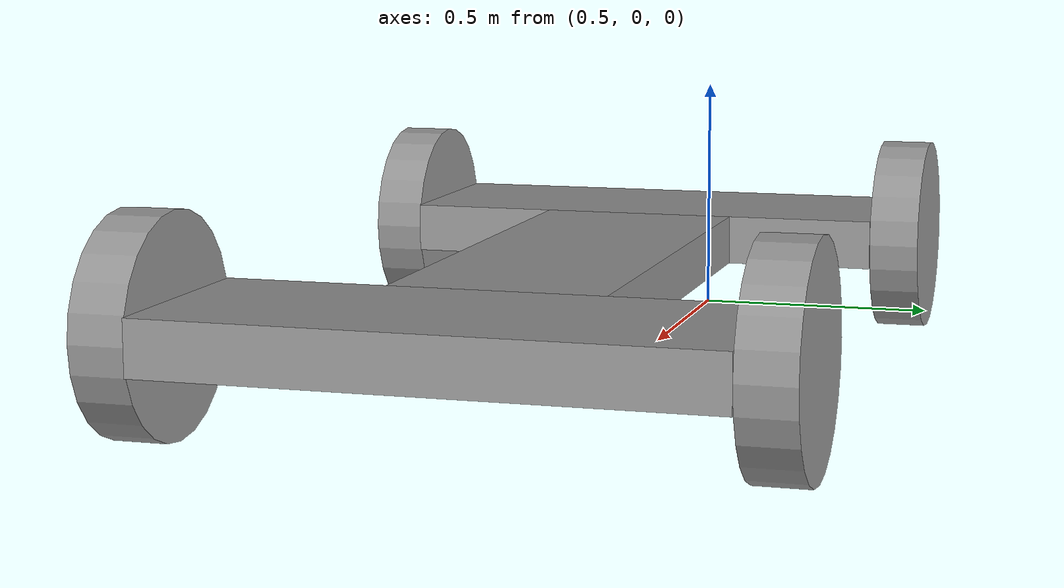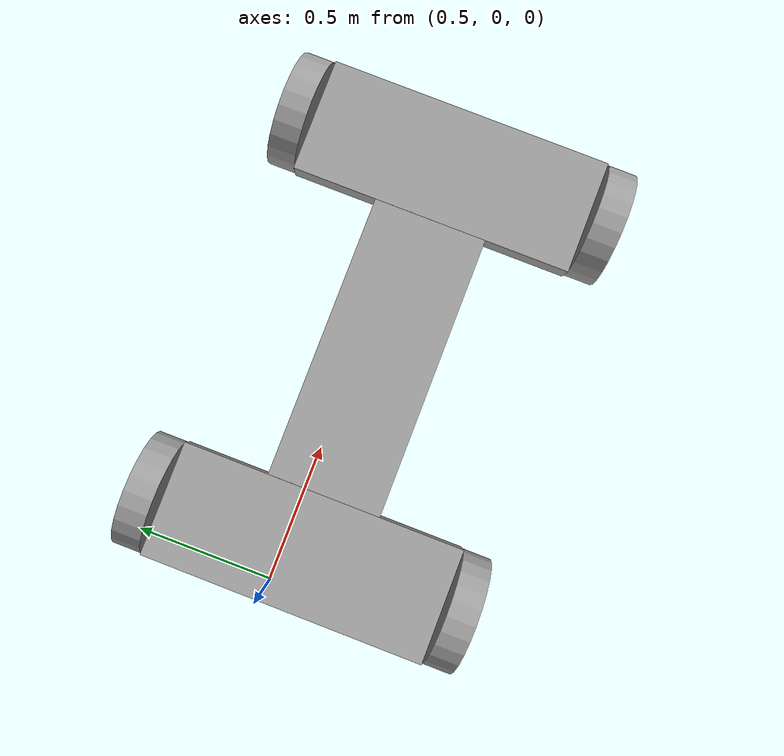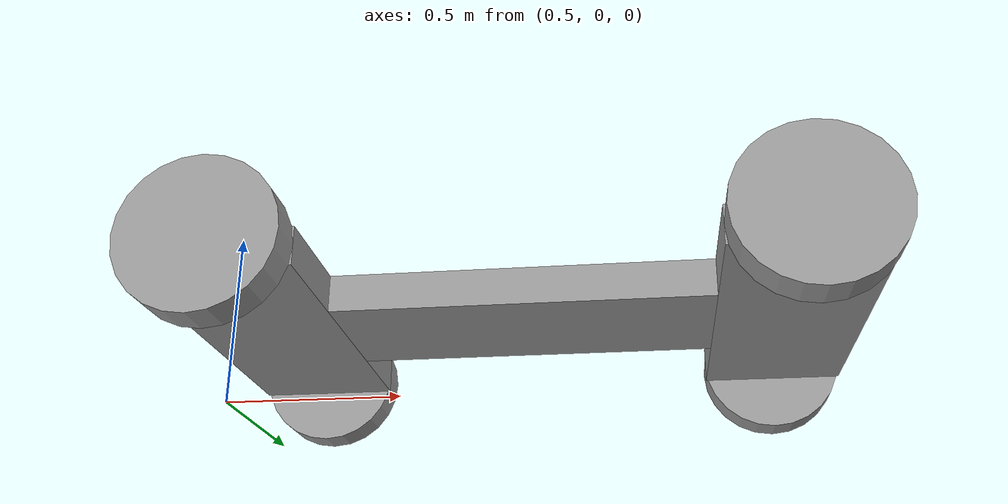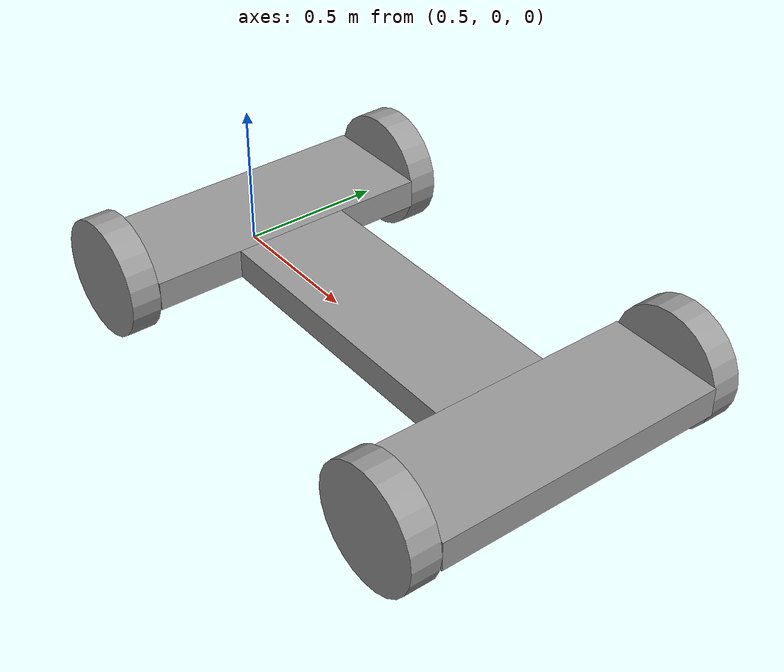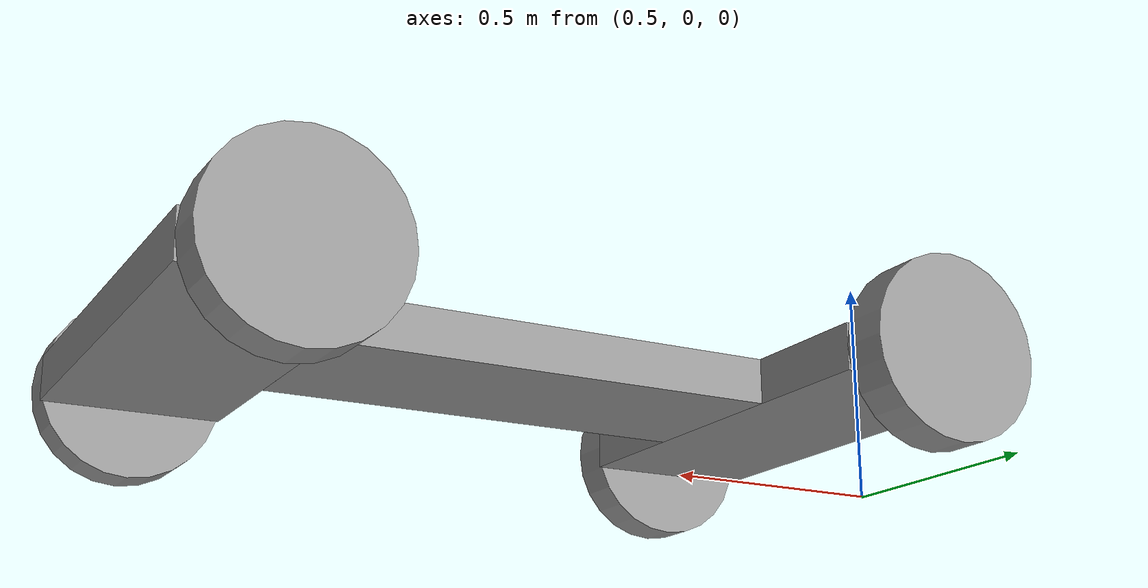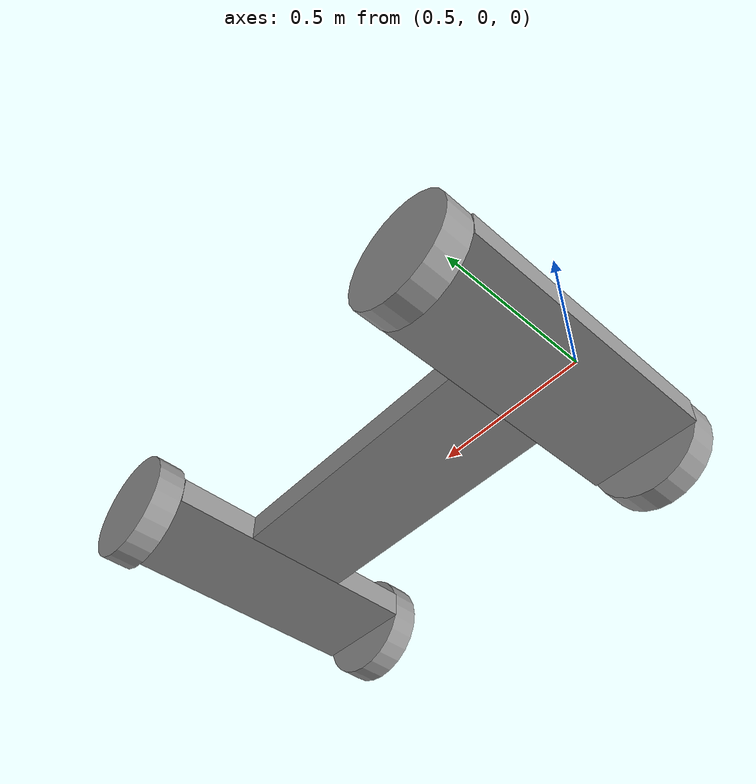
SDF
<?xml version='1.0'?>
<sdf version='1.6'>
  <model name='mycart'>
    <model name='mymodel'>
      <link name='link_0_clone'>
        <inertial>
          <mass>1</mass>
          <inertia>
            <ixx>0.166667</ixx>
            <ixy>0</ixy>
            <ixz>0</ixz>
            <iyy>0.166667</iyy>
            <iyz>0</iyz>
            <izz>0.166667</izz>
          </inertia>
          <pose frame=''>0 0 0 0 -0 0</pose>
        </inertial>
        <pose frame=''>1.36275 -0.076704 0.2 0 -0 1.5707</pose>
        <gravity>1</gravity>
        <self_collide>0</self_collide>
        <kinematic>0</kinematic>
        <enable_wind>0</enable_wind>
        <visual name='visual'>
          <pose frame=''>0 0 0 0 -0 0</pose>
          <geometry>
            <box>
              <size>0.4 1 0.1</size>
            </box>
          </geometry>
          <material>
            <lighting>1</lighting>
            <script>
              <uri>file://media/materials/scripts/gazebo.material</uri>
              <name>Gazebo/Grey</name>
            </script>
            <shader type='vertex'>
              <normal_map>__default__</normal_map>
            </shader>
            <ambient>0.3 0.3 0.3 1</ambient>
            <diffuse>0.7 0.7 0.7 1</diffuse>
            <specular>0.01 0.01 0.01 1</specular>
            <emissive>0 0 0 1</emissive>
          </material>
          <transparency>0</transparency>
          <cast_shadows>1</cast_shadows>
        </visual>
        <collision name='collision'>
          <laser_retro>0</laser_retro>
          <max_contacts>10</max_contacts>
          <pose frame=''>0 0 0 0 -0 0</pose>
          <geometry>
            <box>
              <size>0.4 1 0.1</size>
            </box>
          </geometry>
          <surface>
            <friction>
              <ode>
                <mu>1</mu>
                <mu2>1</mu2>
                <fdir1>0 0 0</fdir1>
                <slip1>0</slip1>
                <slip2>0</slip2>
              </ode>
              <torsional>
                <coefficient>1</coefficient>
                <patch_radius>0</patch_radius>
                <surface_radius>0</surface_radius>
                <use_patch_radius>1</use_patch_radius>
                <ode>
                  <slip>0</slip>
                </ode>
              </torsional>
            </friction>
            <bounce>
              <restitution_coefficient>0</restitution_coefficient>
              <threshold>1e+06</threshold>
            </bounce>
            <contact>
              <collide_without_contact>0</collide_without_contact>
              <collide_without_contact_bitmask>1</collide_without_contact_bitmask>
              <collide_bitmask>1</collide_bitmask>
              <ode>
                <soft_cfm>0</soft_cfm>
                <soft_erp>0.2</soft_erp>
                <kp>1e+13</kp>
                <kd>1</kd>
                <max_vel>0.01</max_vel>
                <min_depth>0</min_depth>
              </ode>
              <bullet>
                <split_impulse>1</split_impulse>
                <split_impulse_penetration_threshold>-0.01</split_impulse_penetration_threshold>
                <soft_cfm>0</soft_cfm>
                <soft_erp>0.2</soft_erp>
                <kp>1e+13</kp>
                <kd>1</kd>
              </bullet>
            </contact>
          </surface>
        </collision>
      </link>
      <link name='link_0_clone_0'>
        <inertial>
          <mass>1</mass>
          <inertia>
            <ixx>0.166667</ixx>
            <ixy>0</ixy>
            <ixz>0</ixz>
            <iyy>0.166667</iyy>
            <iyz>0</iyz>
            <izz>0.166667</izz>
          </inertia>
          <pose frame=''>0 0 0 0 -0 0</pose>
        </inertial>
        <pose frame=''>2.06277 -0.076704 0.2 0 -0 0</pose>
        <gravity>1</gravity>
        <self_collide>0</self_collide>
        <kinematic>0</kinematic>
        <enable_wind>0</enable_wind>
        <visual name='visual'>
          <pose frame=''>0 0 0 0 -0 0</pose>
          <geometry>
            <box>
              <size>0.4 1 0.1</size>
            </box>
          </geometry>
          <material>
            <lighting>1</lighting>
            <script>
              <uri>file://media/materials/scripts/gazebo.material</uri>
              <name>Gazebo/Grey</name>
            </script>
            <shader type='vertex'>
              <normal_map>__default__</normal_map>
            </shader>
            <ambient>0.3 0.3 0.3 1</ambient>
            <diffuse>0.7 0.7 0.7 1</diffuse>
            <specular>0.01 0.01 0.01 1</specular>
            <emissive>0 0 0 1</emissive>
          </material>
          <transparency>0</transparency>
          <cast_shadows>1</cast_shadows>
        </visual>
        <collision name='collision'>
          <laser_retro>0</laser_retro>
          <max_contacts>10</max_contacts>
          <pose frame=''>0 0 0 0 -0 0</pose>
          <geometry>
            <box>
              <size>0.4 1 0.1</size>
            </box>
          </geometry>
          <surface>
            <friction>
              <ode>
                <mu>1</mu>
                <mu2>1</mu2>
                <fdir1>0 0 0</fdir1>
                <slip1>0</slip1>
                <slip2>0</slip2>
              </ode>
              <torsional>
                <coefficient>1</coefficient>
                <patch_radius>0</patch_radius>
                <surface_radius>0</surface_radius>
                <use_patch_radius>1</use_patch_radius>
                <ode>
                  <slip>0</slip>
                </ode>
              </torsional>
            </friction>
            <bounce>
              <restitution_coefficient>0</restitution_coefficient>
              <threshold>1e+06</threshold>
            </bounce>
            <contact>
              <collide_without_contact>0</collide_without_contact>
              <collide_without_contact_bitmask>1</collide_without_contact_bitmask>
              <collide_bitmask>1</collide_bitmask>
              <ode>
                <soft_cfm>0</soft_cfm>
                <soft_erp>0.2</soft_erp>
                <kp>1e+13</kp>
                <kd>1</kd>
                <max_vel>0.01</max_vel>
                <min_depth>0</min_depth>
              </ode>
              <bullet>
                <split_impulse>1</split_impulse>
                <split_impulse_penetration_threshold>-0.01</split_impulse_penetration_threshold>
                <soft_cfm>0</soft_cfm>
                <soft_erp>0.2</soft_erp>
                <kp>1e+13</kp>
                <kd>1</kd>
              </bullet>
            </contact>
          </surface>
        </collision>
      </link>
      <link name='link_0_clone_0_clone'>
        <inertial>
          <mass>1</mass>
          <inertia>
            <ixx>0.166667</ixx>
            <ixy>0</ixy>
            <ixz>0</ixz>
            <iyy>0.166667</iyy>
            <iyz>0</iyz>
            <izz>0.166667</izz>
          </inertia>
          <pose frame=''>0 0 0 0 -0 0</pose>
        </inertial>
        <pose frame=''>0.66273 -0.076704 0.2 0 -0 0</pose>
        <gravity>1</gravity>
        <self_collide>0</self_collide>
        <kinematic>0</kinematic>
        <enable_wind>0</enable_wind>
        <visual name='visual'>
          <pose frame=''>0 0 0 0 -0 0</pose>
          <geometry>
            <box>
              <size>0.4 1 0.1</size>
            </box>
          </geometry>
          <material>
            <lighting>1</lighting>
            <script>
              <uri>file://media/materials/scripts/gazebo.material</uri>
              <name>Gazebo/Grey</name>
            </script>
            <shader type='vertex'>
              <normal_map>__default__</normal_map>
            </shader>
            <ambient>0.3 0.3 0.3 1</ambient>
            <diffuse>0.7 0.7 0.7 1</diffuse>
            <specular>0.01 0.01 0.01 1</specular>
            <emissive>0 0 0 1</emissive>
          </material>
          <transparency>0</transparency>
          <cast_shadows>1</cast_shadows>
        </visual>
        <collision name='collision'>
          <laser_retro>0</laser_retro>
          <max_contacts>10</max_contacts>
          <pose frame=''>0 0 0 0 -0 0</pose>
          <geometry>
            <box>
              <size>0.4 1 0.1</size>
            </box>
          </geometry>
          <surface>
            <friction>
              <ode>
                <mu>1</mu>
                <mu2>1</mu2>
                <fdir1>0 0 0</fdir1>
                <slip1>0</slip1>
                <slip2>0</slip2>
              </ode>
              <torsional>
                <coefficient>1</coefficient>
                <patch_radius>0</patch_radius>
                <surface_radius>0</surface_radius>
                <use_patch_radius>1</use_patch_radius>
                <ode>
                  <slip>0</slip>
                </ode>
              </torsional>
            </friction>
            <bounce>
              <restitution_coefficient>0</restitution_coefficient>
              <threshold>1e+06</threshold>
            </bounce>
            <contact>
              <collide_without_contact>0</collide_without_contact>
              <collide_without_contact_bitmask>1</collide_without_contact_bitmask>
              <collide_bitmask>1</collide_bitmask>
              <ode>
                <soft_cfm>0</soft_cfm>
                <soft_erp>0.2</soft_erp>
                <kp>1e+13</kp>
                <kd>1</kd>
                <max_vel>0.01</max_vel>
                <min_depth>0</min_depth>
              </ode>
              <bullet>
                <split_impulse>1</split_impulse>
                <split_impulse_penetration_threshold>-0.01</split_impulse_penetration_threshold>
                <soft_cfm>0</soft_cfm>
                <soft_erp>0.2</soft_erp>
                <kp>1e+13</kp>
                <kd>1</kd>
              </bullet>
            </contact>
          </surface>
        </collision>
      </link>
      <link name='link_1_clone'>
        <inertial>
          <mass>1</mass>
          <inertia>
            <ixx>0.145833</ixx>
            <ixy>0</ixy>
            <ixz>0</ixz>
            <iyy>0.145833</iyy>
            <iyz>0</iyz>
            <izz>0.125</izz>
          </inertia>
          <pose frame=''>0 0 0 0 -0 0</pose>
        </inertial>
        <pose frame=''>2.06277 -0.626723 0.2 1.5707 -0 0</pose>
        <gravity>1</gravity>
        <self_collide>0</self_collide>
        <kinematic>0</kinematic>
        <enable_wind>0</enable_wind>
        <visual name='visual'>
          <pose frame=''>0 0 0 0 -0 0</pose>
          <geometry>
            <cylinder>
              <radius>0.2</radius>
              <length>0.1</length>
            </cylinder>
          </geometry>
          <material>
            <lighting>1</lighting>
            <script>
              <uri>file://media/materials/scripts/gazebo.material</uri>
              <name>Gazebo/Grey</name>
            </script>
            <shader type='vertex'>
              <normal_map>__default__</normal_map>
            </shader>
            <ambient>0.3 0.3 0.3 1</ambient>
            <diffuse>0.7 0.7 0.7 1</diffuse>
            <specular>0.01 0.01 0.01 1</specular>
            <emissive>0 0 0 1</emissive>
          </material>
          <transparency>0</transparency>
          <cast_shadows>1</cast_shadows>
        </visual>
        <collision name='collision'>
          <laser_retro>0</laser_retro>
          <max_contacts>10</max_contacts>
          <pose frame=''>0 0 0 0 -0 0</pose>
          <geometry>
            <cylinder>
              <radius>0.2</radius>
              <length>0.1</length>
            </cylinder>
          </geometry>
          <surface>
            <friction>
              <ode>
                <mu>1</mu>
                <mu2>1</mu2>
                <fdir1>0 0 0</fdir1>
                <slip1>0</slip1>
                <slip2>0</slip2>
              </ode>
              <torsional>
                <coefficient>1</coefficient>
                <patch_radius>0</patch_radius>
                <surface_radius>0</surface_radius>
                <use_patch_radius>1</use_patch_radius>
                <ode>
                  <slip>0</slip>
                </ode>
              </torsional>
            </friction>
            <bounce>
              <restitution_coefficient>0</restitution_coefficient>
              <threshold>1e+06</threshold>
            </bounce>
            <contact>
              <collide_without_contact>0</collide_without_contact>
              <collide_without_contact_bitmask>1</collide_without_contact_bitmask>
              <collide_bitmask>1</collide_bitmask>
              <ode>
                <soft_cfm>0</soft_cfm>
                <soft_erp>0.2</soft_erp>
                <kp>1e+13</kp>
                <kd>1</kd>
                <max_vel>0.01</max_vel>
                <min_depth>0</min_depth>
              </ode>
              <bullet>
                <split_impulse>1</split_impulse>
                <split_impulse_penetration_threshold>-0.01</split_impulse_penetration_threshold>
                <soft_cfm>0</soft_cfm>
                <soft_erp>0.2</soft_erp>
                <kp>1e+13</kp>
                <kd>1</kd>
              </bullet>
            </contact>
          </surface>
        </collision>
      </link>
      <link name='link_1_clone_1'>
        <inertial>
          <mass>1</mass>
          <inertia>
            <ixx>0.145833</ixx>
            <ixy>0</ixy>
            <ixz>0</ixz>
            <iyy>0.145833</iyy>
            <iyz>0</iyz>
            <izz>0.125</izz>
          </inertia>
          <pose frame=''>0 0 0 0 -0 0</pose>
        </inertial>
        <pose frame=''>0.66273 0.473316 0.2 1.5707 -0 0</pose>
        <gravity>1</gravity>
        <self_collide>0</self_collide>
        <kinematic>0</kinematic>
        <enable_wind>0</enable_wind>
        <visual name='visual'>
          <pose frame=''>0 0 0 0 -0 0</pose>
          <geometry>
            <cylinder>
              <radius>0.2</radius>
              <length>0.1</length>
            </cylinder>
          </geometry>
          <material>
            <lighting>1</lighting>
            <script>
              <uri>file://media/materials/scripts/gazebo.material</uri>
              <name>Gazebo/Grey</name>
            </script>
            <shader type='vertex'>
              <normal_map>__default__</normal_map>
            </shader>
            <ambient>0.3 0.3 0.3 1</ambient>
            <diffuse>0.7 0.7 0.7 1</diffuse>
            <specular>0.01 0.01 0.01 1</specular>
            <emissive>0 0 0 1</emissive>
          </material>
          <transparency>0</transparency>
          <cast_shadows>1</cast_shadows>
        </visual>
        <collision name='collision'>
          <laser_retro>0</laser_retro>
          <max_contacts>10</max_contacts>
          <pose frame=''>0 0 0 0 -0 0</pose>
          <geometry>
            <cylinder>
              <radius>0.2</radius>
              <length>0.1</length>
            </cylinder>
          </geometry>
          <surface>
            <friction>
              <ode>
                <mu>1</mu>
                <mu2>1</mu2>
                <fdir1>0 0 0</fdir1>
                <slip1>0</slip1>
                <slip2>0</slip2>
              </ode>
              <torsional>
                <coefficient>1</coefficient>
                <patch_radius>0</patch_radius>
                <surface_radius>0</surface_radius>
                <use_patch_radius>1</use_patch_radius>
                <ode>
                  <slip>0</slip>
                </ode>
              </torsional>
            </friction>
            <bounce>
              <restitution_coefficient>0</restitution_coefficient>
              <threshold>1e+06</threshold>
            </bounce>
            <contact>
              <collide_without_contact>0</collide_without_contact>
              <collide_without_contact_bitmask>1</collide_without_contact_bitmask>
              <collide_bitmask>1</collide_bitmask>
              <ode>
                <soft_cfm>0</soft_cfm>
                <soft_erp>0.2</soft_erp>
                <kp>1e+13</kp>
                <kd>1</kd>
                <max_vel>0.01</max_vel>
                <min_depth>0</min_depth>
              </ode>
              <bullet>
                <split_impulse>1</split_impulse>
                <split_impulse_penetration_threshold>-0.01</split_impulse_penetration_threshold>
                <soft_cfm>0</soft_cfm>
                <soft_erp>0.2</soft_erp>
                <kp>1e+13</kp>
                <kd>1</kd>
              </bullet>
            </contact>
          </surface>
        </collision>
      </link>
      <link name='link_1_clone_1_clone'>
        <inertial>
          <mass>1</mass>
          <inertia>
            <ixx>0.145833</ixx>
            <ixy>0</ixy>
            <ixz>0</ixz>
            <iyy>0.145833</iyy>
            <iyz>0</iyz>
            <izz>0.125</izz>
          </inertia>
          <pose frame=''>0 0 0 0 -0 0</pose>
        </inertial>
        <pose frame=''>2.06277 0.473316 0.2 1.5707 -0 0</pose>
        <gravity>1</gravity>
        <self_collide>0</self_collide>
        <kinematic>0</kinematic>
        <enable_wind>0</enable_wind>
        <visual name='visual'>
          <pose frame=''>0 0 0 0 -0 0</pose>
          <geometry>
            <cylinder>
              <radius>0.2</radius>
              <length>0.1</length>
            </cylinder>
          </geometry>
          <material>
            <lighting>1</lighting>
            <script>
              <uri>file://media/materials/scripts/gazebo.material</uri>
              <name>Gazebo/Grey</name>
            </script>
            <shader type='vertex'>
              <normal_map>__default__</normal_map>
            </shader>
            <ambient>0.3 0.3 0.3 1</ambient>
            <diffuse>0.7 0.7 0.7 1</diffuse>
            <specular>0.01 0.01 0.01 1</specular>
            <emissive>0 0 0 1</emissive>
          </material>
          <transparency>0</transparency>
          <cast_shadows>1</cast_shadows>
        </visual>
        <collision name='collision'>
          <laser_retro>0</laser_retro>
          <max_contacts>10</max_contacts>
          <pose frame=''>0 0 0 0 -0 0</pose>
          <geometry>
            <cylinder>
              <radius>0.2</radius>
              <length>0.1</length>
            </cylinder>
          </geometry>
          <surface>
            <friction>
              <ode>
                <mu>1</mu>
                <mu2>1</mu2>
                <fdir1>0 0 0</fdir1>
                <slip1>0</slip1>
                <slip2>0</slip2>
              </ode>
              <torsional>
                <coefficient>1</coefficient>
                <patch_radius>0</patch_radius>
                <surface_radius>0</surface_radius>
                <use_patch_radius>1</use_patch_radius>
                <ode>
                  <slip>0</slip>
                </ode>
              </torsional>
            </friction>
            <bounce>
              <restitution_coefficient>0</restitution_coefficient>
              <threshold>1e+06</threshold>
            </bounce>
            <contact>
              <collide_without_contact>0</collide_without_contact>
              <collide_without_contact_bitmask>1</collide_without_contact_bitmask>
              <collide_bitmask>1</collide_bitmask>
              <ode>
                <soft_cfm>0</soft_cfm>
                <soft_erp>0.2</soft_erp>
                <kp>1e+13</kp>
                <kd>1</kd>
                <max_vel>0.01</max_vel>
                <min_depth>0</min_depth>
              </ode>
              <bullet>
                <split_impulse>1</split_impulse>
                <split_impulse_penetration_threshold>-0.01</split_impulse_penetration_threshold>
                <soft_cfm>0</soft_cfm>
                <soft_erp>0.2</soft_erp>
                <kp>1e+13</kp>
                <kd>1</kd>
              </bullet>
            </contact>
          </surface>
        </collision>
      </link>
      <link name='link_1_clone_1_clone_0'>
        <inertial>
          <mass>1</mass>
          <inertia>
            <ixx>0.145833</ixx>
            <ixy>0</ixy>
            <ixz>0</ixz>
            <iyy>0.145833</iyy>
            <iyz>0</iyz>
            <izz>0.125</izz>
          </inertia>
          <pose frame=''>0 0 0 0 -0 0</pose>
        </inertial>
        <pose frame=''>0.66273 -0.626723 0.2 1.5707 -0 0</pose>
        <gravity>1</gravity>
        <self_collide>0</self_collide>
        <kinematic>0</kinematic>
        <enable_wind>0</enable_wind>
        <visual name='visual'>
          <pose frame=''>0 0 0 0 -0 0</pose>
          <geometry>
            <cylinder>
              <radius>0.2</radius>
              <length>0.1</length>
            </cylinder>
          </geometry>
          <material>
            <lighting>1</lighting>
            <script>
              <uri>file://media/materials/scripts/gazebo.material</uri>
              <name>Gazebo/Grey</name>
            </script>
            <shader type='vertex'>
              <normal_map>__default__</normal_map>
            </shader>
            <ambient>0.3 0.3 0.3 1</ambient>
            <diffuse>0.7 0.7 0.7 1</diffuse>
            <specular>0.01 0.01 0.01 1</specular>
            <emissive>0 0 0 1</emissive>
          </material>
          <transparency>0</transparency>
          <cast_shadows>1</cast_shadows>
        </visual>
        <collision name='collision'>
          <laser_retro>0</laser_retro>
          <max_contacts>10</max_contacts>
          <pose frame=''>0 0 0 0 -0 0</pose>
          <geometry>
            <cylinder>
              <radius>0.2</radius>
              <length>0.1</length>
            </cylinder>
          </geometry>
          <surface>
            <friction>
              <ode>
                <mu>1</mu>
                <mu2>1</mu2>
                <fdir1>0 0 0</fdir1>
                <slip1>0</slip1>
                <slip2>0</slip2>
              </ode>
              <torsional>
                <coefficient>1</coefficient>
                <patch_radius>0</patch_radius>
                <surface_radius>0</surface_radius>
                <use_patch_radius>1</use_patch_radius>
                <ode>
                  <slip>0</slip>
                </ode>
              </torsional>
            </friction>
            <bounce>
              <restitution_coefficient>0</restitution_coefficient>
              <threshold>1e+06</threshold>
            </bounce>
            <contact>
              <collide_without_contact>0</collide_without_contact>
              <collide_without_contact_bitmask>1</collide_without_contact_bitmask>
              <collide_bitmask>1</collide_bitmask>
              <ode>
                <soft_cfm>0</soft_cfm>
                <soft_erp>0.2</soft_erp>
                <kp>1e+13</kp>
                <kd>1</kd>
                <max_vel>0.01</max_vel>
                <min_depth>0</min_depth>
              </ode>
              <bullet>
                <split_impulse>1</split_impulse>
                <split_impulse_penetration_threshold>-0.01</split_impulse_penetration_threshold>
                <soft_cfm>0</soft_cfm>
                <soft_erp>0.2</soft_erp>
                <kp>1e+13</kp>
                <kd>1</kd>
              </bullet>
            </contact>
          </surface>
        </collision>
      </link>
      <joint name='link_0_clone_0_JOINT_13' type='revolute'>
        <parent>link_0_clone_0</parent>
        <child>link_1_clone</child>
        <pose frame=''>0 0 0 0 -0 0</pose>
        <axis>
          <xyz>1 0 0</xyz>
          <use_parent_model_frame>0</use_parent_model_frame>
          <limit>
            <lower>-1.79769e+308</lower>
            <upper>1.79769e+308</upper>
            <effort>-1</effort>
            <velocity>-1</velocity>
          </limit>
          <dynamics>
            <spring_reference>0</spring_reference>
            <spring_stiffness>0</spring_stiffness>
            <damping>0</damping>
          </dynamics>
        </axis>
        <physics>
          <ode>
            <limit>
              <cfm>0</cfm>
              <erp>0.2</erp>
            </limit>
            <suspension>
              <cfm>0</cfm>
              <erp>0.2</erp>
            </suspension>
          </ode>
        </physics>
      </joint>
      <joint name='link_0_clone_0_JOINT_14' type='revolute'>
        <parent>link_0_clone_0</parent>
        <child>link_1_clone_1_clone</child>
        <pose frame=''>0 0 0 0 -0 0</pose>
        <axis>
          <xyz>1 0 0</xyz>
          <use_parent_model_frame>0</use_parent_model_frame>
          <limit>
            <lower>-1.79769e+308</lower>
            <upper>1.79769e+308</upper>
            <effort>-1</effort>
            <velocity>-1</velocity>
          </limit>
          <dynamics>
            <spring_reference>0</spring_reference>
            <spring_stiffness>0</spring_stiffness>
            <damping>0</damping>
          </dynamics>
        </axis>
        <physics>
          <ode>
            <limit>
              <cfm>0</cfm>
              <erp>0.2</erp>
            </limit>
            <suspension>
              <cfm>0</cfm>
              <erp>0.2</erp>
            </suspension>
          </ode>
        </physics>
      </joint>
      <joint name='link_0_clone_0_clone_JOINT_11' type='revolute'>
        <parent>link_0_clone_0_clone</parent>
        <child>link_1_clone_1_clone_0</child>
        <pose frame=''>0 0 0 0 -0 0</pose>
        <axis>
          <xyz>1 0 0</xyz>
          <use_parent_model_frame>0</use_parent_model_frame>
          <limit>
            <lower>-1.79769e+308</lower>
            <upper>1.79769e+308</upper>
            <effort>-1</effort>
            <velocity>-1</velocity>
          </limit>
          <dynamics>
            <spring_reference>0</spring_reference>
            <spring_stiffness>0</spring_stiffness>
            <damping>0</damping>
          </dynamics>
        </axis>
        <physics>
          <ode>
            <limit>
              <cfm>0</cfm>
              <erp>0.2</erp>
            </limit>
            <suspension>
              <cfm>0</cfm>
              <erp>0.2</erp>
            </suspension>
          </ode>
        </physics>
      </joint>
      <joint name='link_0_clone_0_clone_JOINT_12' type='revolute'>
        <parent>link_0_clone_0_clone</parent>
        <child>link_1_clone_1</child>
        <pose frame=''>0 0 0 0 -0 0</pose>
        <axis>
          <xyz>1 0 0</xyz>
          <use_parent_model_frame>0</use_parent_model_frame>
          <limit>
            <lower>-1.79769e+308</lower>
            <upper>1.79769e+308</upper>
            <effort>-1</effort>
            <velocity>-1</velocity>
          </limit>
          <dynamics>
            <spring_reference>0</spring_reference>
            <spring_stiffness>0</spring_stiffness>
            <damping>0</damping>
          </dynamics>
        </axis>
        <physics>
          <ode>
            <limit>
              <cfm>0</cfm>
              <erp>0.2</erp>
            </limit>
            <suspension>
              <cfm>0</cfm>
              <erp>0.2</erp>
            </suspension>
          </ode>
        </physics>
      </joint>
      <joint name='link_0_clone_JOINT_10' type='revolute'>
        <parent>link_0_clone</parent>
        <child>link_0_clone_0</child>
        <pose frame=''>0 0 0 0 -0 0</pose>
        <axis>
          <xyz>1 0 0</xyz>
          <use_parent_model_frame>0</use_parent_model_frame>
          <limit>
            <lower>-1.79769e+308</lower>
            <upper>1.79769e+308</upper>
            <effort>-1</effort>
            <velocity>-1</velocity>
          </limit>
          <dynamics>
            <spring_reference>0</spring_reference>
            <spring_stiffness>0</spring_stiffness>
            <damping>0</damping>
          </dynamics>
        </axis>
        <physics>
          <ode>
            <limit>
              <cfm>0</cfm>
              <erp>0.2</erp>
            </limit>
            <suspension>
              <cfm>0</cfm>
              <erp>0.2</erp>
            </suspension>
          </ode>
        </physics>
      </joint>
      <joint name='link_0_clone_JOINT_9' type='revolute'>
        <parent>link_0_clone</parent>
        <child>link_0_clone_0_clone</child>
        <pose frame=''>0 0 0 0 -0 0</pose>
        <axis>
          <xyz>1 0 0</xyz>
          <use_parent_model_frame>0</use_parent_model_frame>
          <limit>
            <lower>-1.79769e+308</lower>
            <upper>1.79769e+308</upper>
            <effort>-1</effort>
            <velocity>-1</velocity>
          </limit>
          <dynamics>
            <spring_reference>0</spring_reference>
            <spring_stiffness>0</spring_stiffness>
            <damping>0</damping>
          </dynamics>
        </axis>
        <physics>
          <ode>
            <limit>
              <cfm>0</cfm>
              <erp>0.2</erp>
            </limit>
            <suspension>
              <cfm>0</cfm>
              <erp>0.2</erp>
            </suspension>
          </ode>
        </physics>
      </joint>
      <static>0</static>
      <allow_auto_disable>1</allow_auto_disable>
      <pose frame=''>-3e-06 -0 0 0 -0 0</pose>
    </model>
    <static>0</static>
    <allow_auto_disable>1</allow_auto_disable>
  </model>
</sdf>
